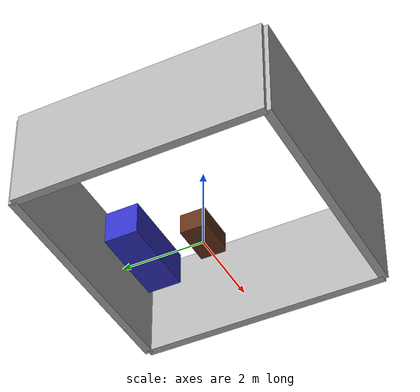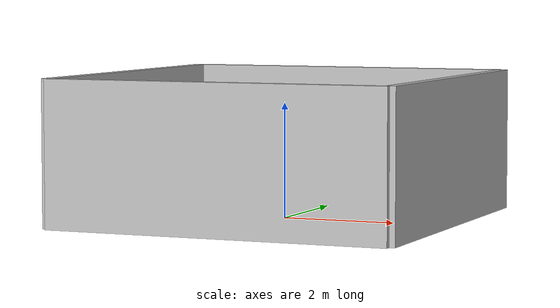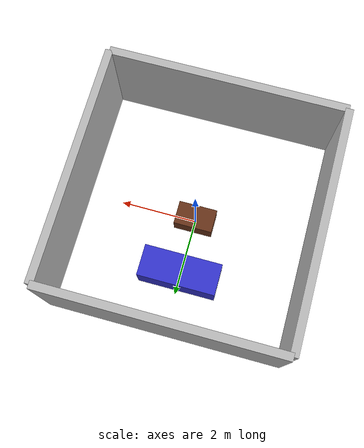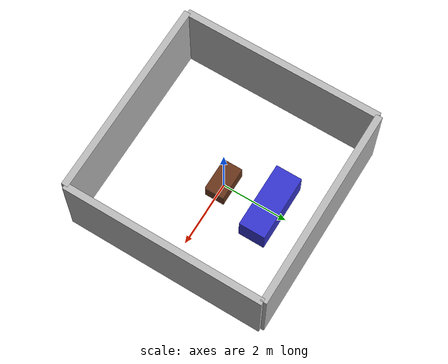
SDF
<?xml version="1.0"?>
<sdf version="1.7">
  <model name="LivingRoom">
    <static>true</static>
    <!-- Simple Walls -->
    <link name="walls">
      <visual name="v_north"><pose>0 3 1.25 0 0 0</pose><geometry><box><size>6 0.2 2.5</size></box></geometry></visual>
      <visual name="v_south"><pose>0 -3 1.25 0 0 0</pose><geometry><box><size>6 0.2 2.5</size></box></geometry></visual>
      <visual name="v_east"><pose>3 0 1.25 0 0 0</pose><geometry><box><size>0.2 6 2.5</size></box></geometry></visual>
      <visual name="v_west"><pose>-3 0 1.25 0 0 0</pose><geometry><box><size>0.2 6 2.5</size></box></geometry></visual>
      <collision name="c_north"><pose>0 3 1.25 0 0 0</pose><geometry><box><size>6 0.2 2.5</size></box></geometry></collision>
      <collision name="c_south"><pose>0 -3 1.25 0 0 0</pose><geometry><box><size>6 0.2 2.5</size></box></geometry></collision>
      <collision name="c_east"><pose>3 0 1.25 0 0 0</pose><geometry><box><size>0.2 6 2.5</size></box></geometry></collision>
      <collision name="c_west"><pose>-3 0 1.25 0 0 0</pose><geometry><box><size>0.2 6 2.5</size></box></geometry></collision>
    </link>
    <!-- Furniture primitives -->
    <link name="furniture">
      <visual name="sofa"><pose>0 1.5 0.4 0 0 0</pose><geometry><box><size>2.0 0.8 0.8</size></box></geometry><material><ambient>0.2 0.2 0.8 1</ambient></material></visual>
      <collision name="sofa_c"><pose>0 1.5 0.4 0 0 0</pose><geometry><box><size>2.0 0.8 0.8</size></box></geometry></collision>
      <visual name="table"><pose>0 0 0.25 0 0 0</pose><geometry><box><size>1.0 0.6 0.5</size></box></geometry><material><ambient>0.4 0.2 0.1 1</ambient></material></visual>
      <collision name="table_c"><pose>0 0 0.25 0 0 0</pose><geometry><box><size>1.0 0.6 0.5</size></box></geometry></collision>
    </link>
  </model>
</sdf>
